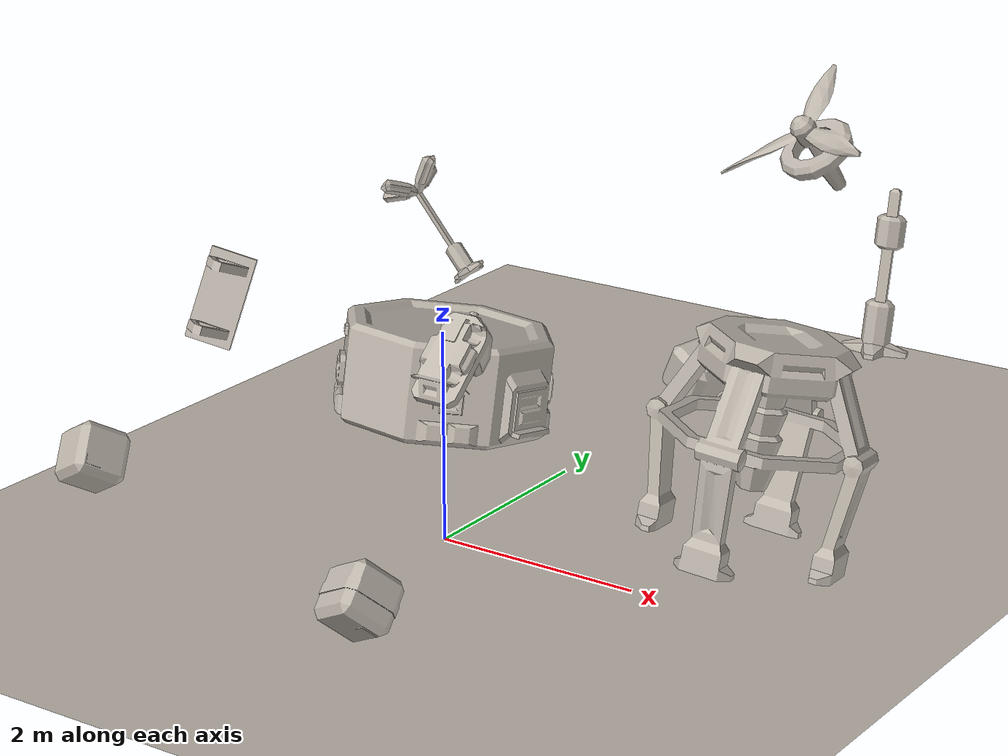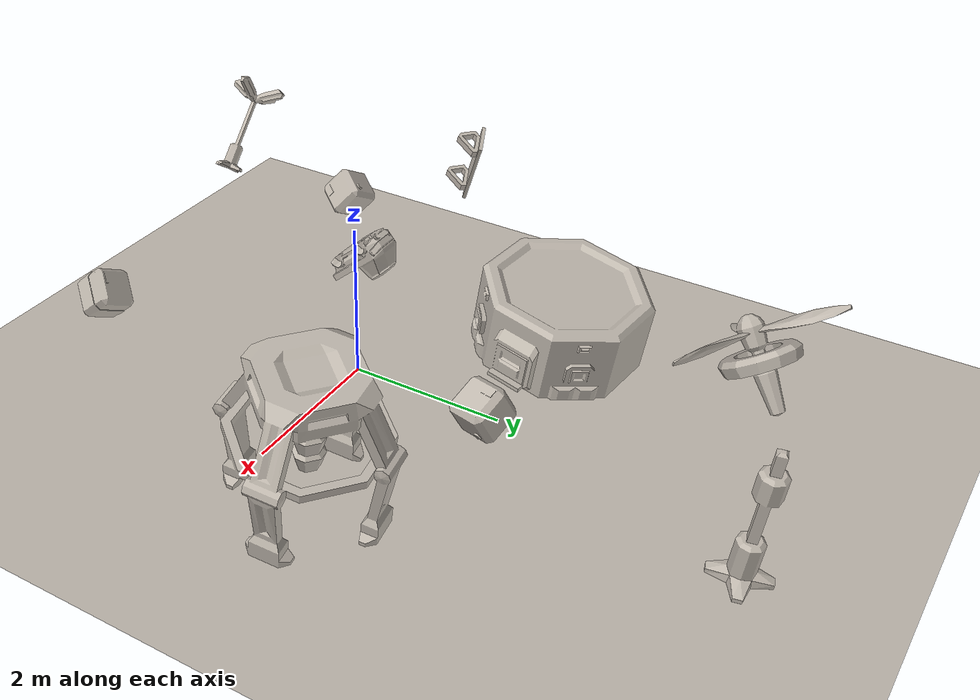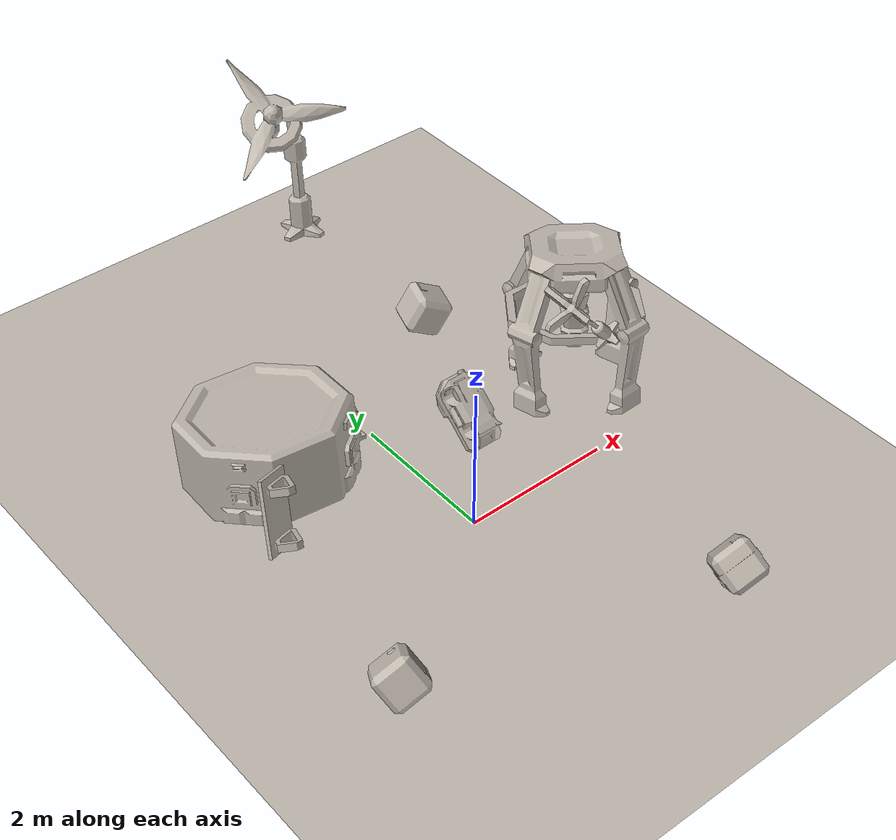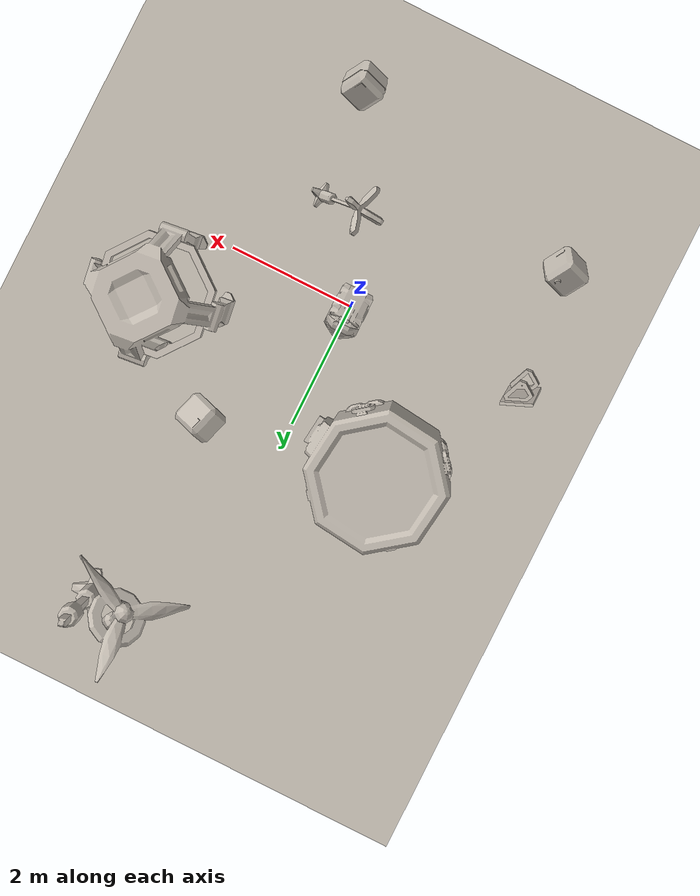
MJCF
<?xml version='1.0' encoding='utf-8'?>
<mujoco model="My Final Project">
  <option timestep="0.002" gravity="0 0 0" />
  <asset>
    <texture name="grid" type="2d" file="D:/Research/CG/Final/Assets/textures/moon_01_diff_4k.png" />
    <material name="grid_mat" texture="grid" texrepeat="1 1" texuniform="true" reflectance=".2" />
    <texture type="2d" name="basemodule_C_spacebits_texture" file="../Import_mjcf/basemodule_C/spacebits_texture.png" />
    <material name="basemodule_C_spacebits_texture" texture="basemodule_C_spacebits_texture" specular="0.50196078" shininess="0.15999998099999999" />
    <mesh file="../Import_mjcf/basemodule_C/basemodule_C.obj" name="basemodule_C_basemodule_C" />
    <texture type="2d" name="cargo_B_spacebits_texture" file="../Import_mjcf/cargo_B/spacebits_texture.png" />
    <material name="cargo_B_spacebits_texture" texture="cargo_B_spacebits_texture" specular="0.50196078" shininess="0.15999998099999999" />
    <mesh file="../Import_mjcf/cargo_B/cargo_B.obj" name="cargo_B_cargo_B" />
    <mesh file="../Import_mjcf/cargo_B/cargo_B.obj" name="cargo_B_cargo_B_1" />
    <texture type="2d" name="containers_D_spacebits_texture" file="../Import_mjcf/containers_D/spacebits_texture.png" />
    <material name="containers_D_spacebits_texture" texture="containers_D_spacebits_texture" specular="0.50196078" shininess="0.15999998099999999" />
    <mesh file="../Import_mjcf/containers_D/containers_D.obj" name="containers_D_containers_D" />
    <texture type="2d" name="windturbine_tall_fan_spacebits_texture" file="../Import_mjcf/windturbine_tall_fan/spacebits_texture.png" />
    <material name="windturbine_tall_fan_spacebits_texture" texture="windturbine_tall_fan_spacebits_texture" specular="0.50196078" shininess="0.15999998099999999" />
    <mesh file="../Import_mjcf/windturbine_tall_fan/windturbine_tall_fan.obj" name="windturbine_tall_fan_windturbine_tall_fan" />
    <texture type="2d" name="lights_spacebits_texture" file="../Import_mjcf/lights/spacebits_texture.png" />
    <material name="lights_spacebits_texture" texture="lights_spacebits_texture" specular="0.5" shininess="0.15999998099999999" />
    <mesh file="../Import_mjcf/lights/lights.obj" name="lights_lights" />
    <texture type="2d" name="drill_structure_spacebits_texture" file="../Import_mjcf/drill_structure/spacebits_texture.png" />
    <material name="drill_structure_spacebits_texture" texture="drill_structure_spacebits_texture" specular="0.50196078" shininess="0.15999998099999999" />
    <mesh file="../Import_mjcf/drill_structure/drill_structure.obj" name="drill_structure_drill_structure" />
    <texture type="2d" name="cargo_B_packed_spacebits_texture" file="../Import_mjcf/cargo_B_packed/spacebits_texture.png" />
    <material name="cargo_B_packed_spacebits_texture" texture="cargo_B_packed_spacebits_texture" specular="0.50196078" shininess="0.15999998099999999" />
    <mesh file="../Import_mjcf/cargo_B_packed/cargo_B_packed.obj" name="cargo_B_packed_cargo_B_packed" />
    <texture type="2d" name="cargo_A_spacebits_texture" file="../Import_mjcf/cargo_A/spacebits_texture.png" />
    <material name="cargo_A_spacebits_texture" texture="cargo_A_spacebits_texture" specular="0.50196078" shininess="0.15999998099999999" />
    <mesh file="../Import_mjcf/cargo_A/cargo_A.obj" name="cargo_A_cargo_A" />
    <texture type="2d" name="windturbine_tall_spacebits_texture" file="../Import_mjcf/windturbine_tall/spacebits_texture.png" />
    <material name="windturbine_tall_spacebits_texture" texture="windturbine_tall_spacebits_texture" specular="0.50196078" shininess="0.15999998099999999" />
    <mesh file="../Import_mjcf/windturbine_tall/windturbine_tall.obj" name="windturbine_tall_windturbine_tall" />
    <texture type="2d" name="spacetruck_spacebits_texture" file="../Import_mjcf/spacetruck/spacebits_texture.png" />
    <material name="spacetruck_spacebits_texture" texture="spacetruck_spacebits_texture" specular="0.50196078" shininess="0.15999998099999999" />
    <mesh file="../Import_mjcf/spacetruck/spacetruck.obj" name="spacetruck_spacetruck" />
    <texture type="2d" name="solarpanel_spacebits_texture" file="../Import_mjcf/solarpanel/spacebits_texture.png" />
    <material name="solarpanel_spacebits_texture" texture="solarpanel_spacebits_texture" specular="0.50196078" shininess="0.15999998099999999" />
    <mesh file="../Import_mjcf/solarpanel/solarpanel.obj" name="solarpanel_solarpanel" />
  </asset>
  <worldbody>
    <light pos="0 0 10" dir="0 0 -1" diffuse="0.8 0.8 0.8" />
    <geom name="floor" type="plane" size="10 10 .1" material="grid_mat" />
    <body name="basemodule_C" pos="-1.5000 2.0000 0.2000" quat="0.5567 0.4916 0.5167 0.4260">
      <geom material="basemodule_C_spacebits_texture" mesh="basemodule_C_basemodule_C" group="2" type="mesh" contype="1" conaffinity="1" />
      <geom mesh="basemodule_C_basemodule_C" group="3" type="mesh" contype="1" conaffinity="1" rgba="0.9 0.9 0.9 1" />
      <joint type="free" name="basemodule_C_freejoint" />
    </body>
    <body name="cargo_B" pos="-2.5000 -2.0000 0.6500" quat="0.7970 0.2906 0.4158 0.3279">
      <geom material="cargo_B_spacebits_texture" mesh="cargo_B_cargo_B_1" group="2" type="mesh" contype="1" conaffinity="1" />
      <geom mesh="cargo_B_cargo_B_1" group="3" type="mesh" contype="1" conaffinity="1" rgba="0.9 0.9 0.9 1" />
      <joint type="free" name="cargo_B_freejoint" />
    </body>
    <body name="windturbine_tall_fan" pos="2.5000 6.0000 3.6605" quat="-0.4563 -0.0168 0.3071 -0.8350">
      <geom material="windturbine_tall_fan_spacebits_texture" mesh="windturbine_tall_fan_windturbine_tall_fan" group="2" type="mesh" contype="1" conaffinity="1" />
      <geom mesh="windturbine_tall_fan_windturbine_tall_fan" group="3" type="mesh" contype="1" conaffinity="1" rgba="0.9 0.9 0.9 1" />
      <joint type="free" name="windturbine_tall_fan_freejoint" />
    </body>
    <body name="lights" pos="1.0000 -1.0000 3.0000" quat="0.2824 0.6348 -0.6520 -0.3038">
      <geom material="lights_spacebits_texture" mesh="lights_lights" group="2" type="mesh" contype="1" conaffinity="1" />
      <geom mesh="lights_lights" group="3" type="mesh" contype="1" conaffinity="1" rgba="0.9 0.9 0.9 1" />
      <joint type="free" name="lights_freejoint" />
    </body>
    <body name="drill_structure" pos="2.5000 1.0000 0.1500" quat="0.6654 0.6003 0.3620 0.2566">
      <geom material="drill_structure_spacebits_texture" mesh="drill_structure_drill_structure" group="2" type="mesh" contype="1" conaffinity="1" />
      <geom mesh="drill_structure_drill_structure" group="3" type="mesh" contype="1" conaffinity="1" rgba="0.9 0.9 0.9 1" />
      <joint type="free" name="drill_structure_freejoint" />
    </body>
    <body name="cargo_B_packed" pos="1.5000 -3.0000 0.9500" quat="0.4235 -0.6260 0.6519 0.0613">
      <geom material="cargo_B_packed_spacebits_texture" mesh="cargo_B_packed_cargo_B_packed" group="2" type="mesh" contype="1" conaffinity="1" />
      <geom mesh="cargo_B_packed_cargo_B_packed" group="3" type="mesh" contype="1" conaffinity="1" rgba="0.9 0.9 0.9 1" />
      <joint type="free" name="cargo_B_packed_freejoint" />
    </body>
    <body name="cargo_A" pos="1.0000 2.5000 1.2500" quat="0.2139 -0.7729 -0.5857 0.1176">
      <geom material="cargo_A_spacebits_texture" mesh="cargo_A_cargo_A" group="2" type="mesh" contype="1" conaffinity="1" />
      <geom mesh="cargo_A_cargo_A" group="3" type="mesh" contype="1" conaffinity="1" rgba="0.9 0.9 0.9 1" />
      <joint type="free" name="cargo_A_freejoint" />
    </body>
    <body name="windturbine_tall" pos="1.5000 5.5000 0.5000" quat="0.7364 0.6599 0.1238 0.0827">
      <geom material="windturbine_tall_spacebits_texture" mesh="windturbine_tall_windturbine_tall" group="2" type="mesh" contype="1" conaffinity="1" />
      <geom mesh="windturbine_tall_windturbine_tall" group="3" type="mesh" contype="1" conaffinity="1" rgba="0.9 0.9 0.9 1" />
      <joint type="free" name="windturbine_tall_freejoint" />
    </body>
    <body name="spacetruck" pos="0.0000 0.0000 1.8500" quat="0.9100 -0.4147 0.0000 0.0000">
      <geom material="spacetruck_spacebits_texture" mesh="spacetruck_spacetruck" group="2" type="mesh" contype="1" conaffinity="1" />
      <geom mesh="spacetruck_spacetruck" group="3" type="mesh" contype="1" conaffinity="1" rgba="0.9 0.9 0.9 1" />
      <joint type="free" name="spacetruck_freejoint" />
    </body>
    <body name="solarpanel" pos="-2.5000 0.0000 1.8000" quat="0.4602 -0.4671 0.6788 0.3305">
      <geom material="solarpanel_spacebits_texture" mesh="solarpanel_solarpanel" group="2" type="mesh" contype="1" conaffinity="1" />
      <geom mesh="solarpanel_solarpanel" group="3" type="mesh" contype="1" conaffinity="1" rgba="0.9 0.9 0.9 1" />
      <joint type="free" name="solarpanel_freejoint" />
    </body>
  </worldbody>
</mujoco>
